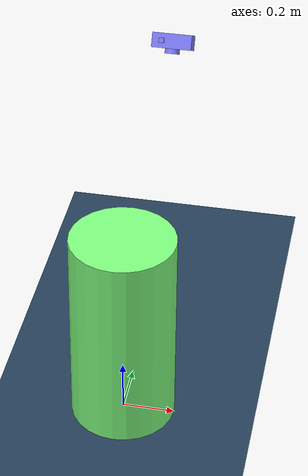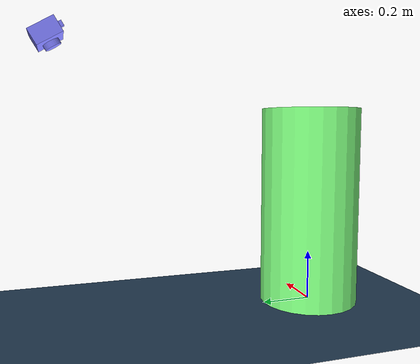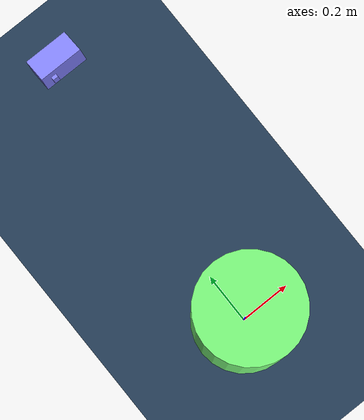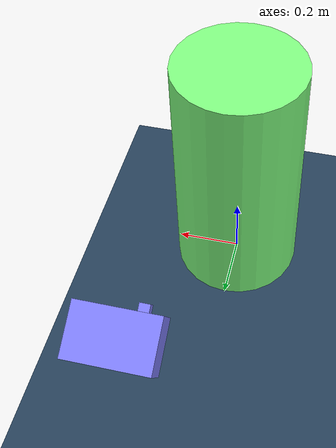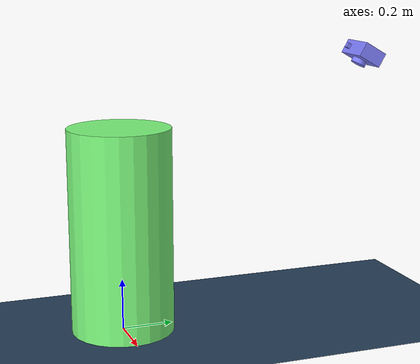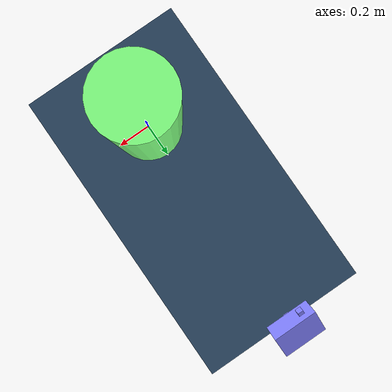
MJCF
<mujoco model="sample_mujoco_ros_utils">
  <compiler autolimits="true"/>

  <extension>
    <plugin plugin="MujocoRosUtils::ClockPublisher"/>
    <plugin plugin="MujocoRosUtils::PosePublisher"/>
    <plugin plugin="MujocoRosUtils::ImagePublisher"/>
    <plugin plugin="MujocoRosUtils::ActuatorCommand"/>
    <plugin plugin="MujocoRosUtils::ExternalForce"/>
    <plugin plugin="MujocoRosUtils::SensorPublisher"/>
  </extension>

  <asset>
    <texture name="floor" type="2d" builtin="checker" rgb1="0.1 0.2 0.3" rgb2="0.2 0.3 0.4" width="300" height="300" mark="edge" markrgb="0.2 0.3 0.4"/>
    <material name="floor" texture="floor" texrepeat="10 10" texuniform="true"/>
  </asset>

  <visual>
    <headlight ambient="0.7 0.7 0.7" diffuse="0.2 0.2 0.2" specular="0.1 0.1 0.1"/>
    <map znear="0.01"/>
    <scale contactwidth="0.02" contactheight="0.5"/>
    <rgba rangefinder="1 1 0.1 0.1"/>
  </visual>

  <statistic center="0 0 1" extent="1" meansize="0.1"/>
	<option impratio="10" integrator="implicitfast" timestep="0.001" />

  <worldbody>
    <plugin plugin="MujocoRosUtils::ClockPublisher">
      <config key="topic_name" value="/clock"/>
      <config key="publish_rate" value="100"/>
      <config key="use_sim_time" value="true"/>
    </plugin>

    <light pos="1 0 0.3" dir="-1 0 -0.3"/>
    <light pos="-1 0 0.3" dir="1 0 -0.3"/>

    <geom name="floor" type="plane" material="floor" size="10.0 10.0 0.01" pos="0 0 -0.01"/>

    <body name="object" pos="0 0 0.4">
      <freejoint/>
      <site name="object_center"/>
      <geom type="cylinder" size="0.2 0.4" mass="0.1" rgba="0.5 1.0 0.5 1.0"/>
      <plugin plugin="MujocoRosUtils::ExternalForce">
        <config key="topic_name" value="/external_force"/>
        <config key="vis_scale" value="0.1"/>
      </plugin>
    </body>

    <body name="camera" pos="0 1.0 1.0" euler="-30 0 180">
      <joint name="camera_pan" axis="0 1 0" range="-90 90" damping="0.5" armature="0.1"/>
      <joint name="camera_tilt" axis="1 0 0" range="-90 90" damping="0.5" armature="0.1"/>
      <camera name="camera" fovy="58"/>
      <body name="camera_frame" euler="180 0 0"/>
      <body name="camera_marker" pos="0 0 0.05">
        <geom type="box" size="0.08 0.05 0.03" mass="1.0" rgba="0.5 0.5 1.0 1.0"/>
        <geom type="box" size="0.01 0.01 0.01" mass="0.0" rgba="0.5 0.5 1.0 1.0" pos="0.04 0.055 0"/>
        <geom type="cylinder" size="0.03 0.01" mass="0.0" rgba="0.5 0.5 1.0 1.0" pos="0 0 -0.04"/>
      </body>
    </body>

  </worldbody>

  <actuator>
    <position name="camera_pan" joint="camera_pan"/>
    <position name="camera_tilt" joint="camera_tilt"/>

    <plugin plugin="MujocoRosUtils::ActuatorCommand" joint="camera_pan">
      <config key="topic_name" value="/camera_pan"/>
    </plugin>
  </actuator>

  <sensor>
    <plugin name="pose_publisher" plugin="MujocoRosUtils::PosePublisher" objtype="xbody" objname="object">
      <config key="frame_id" value="map"/>
      <config key="pose_topic_name" value="/pose"/>
      <config key="vel_topic_name" value="/vel"/>
      <config key="publish_rate" value="30"/>
      <config key="output_tf" value="false"/>
    </plugin>

    <plugin name="tf_publisher" plugin="MujocoRosUtils::PosePublisher" objtype="xbody" objname="camera_frame">
      <config key="frame_id" value="map"/>
      <config key="publish_rate" value="30"/>
      <config key="output_tf" value="true"/>
      <config key="tf_child_frame_id" value="camera"/>
    </plugin>

    <plugin name="image_publisher" plugin="MujocoRosUtils::ImagePublisher" objtype="camera" objname="camera">
      <config key="frame_id" value="camera"/>
      <config key="color_topic_name" value="/image/color"/>
      <config key="depth_topic_name" value="/image/depth"/>
      <config key="info_topic_name" value="/image/camera_info"/>
      <config key="height" value="480"/>
      <config key="width" value="640"/>
      <config key="publish_rate" value="15"/>
      <config key="parallel_processing" value="true"/>
      <config key="point_cloud_downsample" value="2"/>
    </plugin>

  </sensor>
</mujoco>
